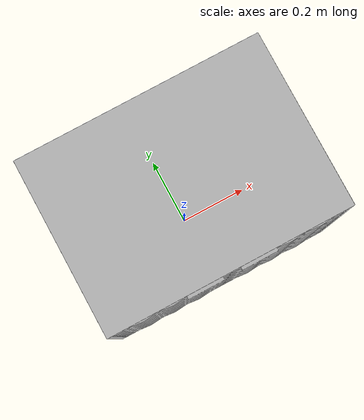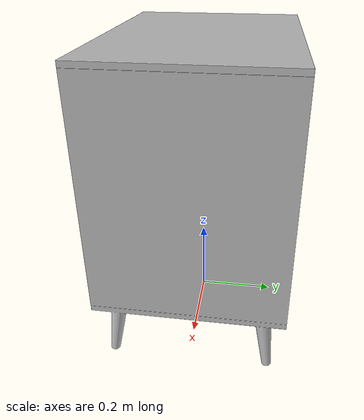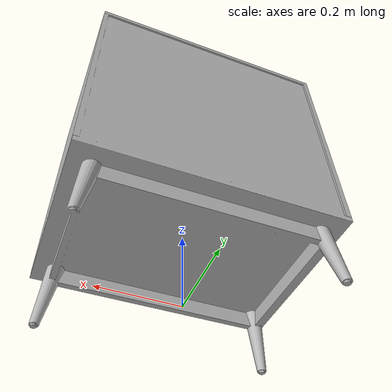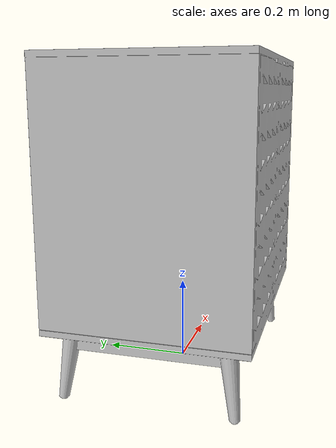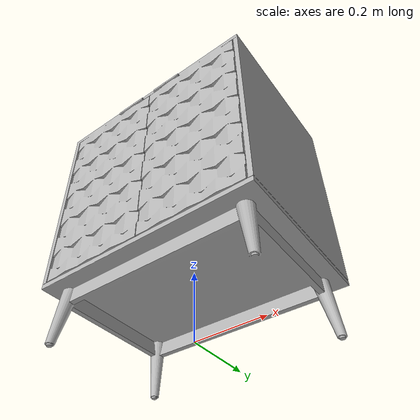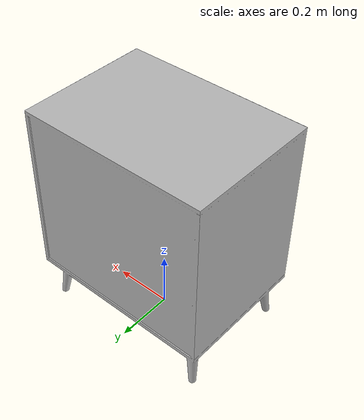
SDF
<sdf version="1.6">
	<model name="BarCabinets_O1e58b6dec52_lod0">
		<link name="main_link">
			<visual name="visual_RootNode">
				<geometry>
					<mesh>
						<uri>model://BarCabinets_O1e58b6dec52_lod0/meshes/visual_RootNode.dae</uri>
					</mesh>
				</geometry>
			</visual>
			<collision name="collision_RootNode_lod0_0">
				<geometry>
					<mesh>
						<uri>model://BarCabinets_O1e58b6dec52_lod0/meshes/collision_RootNode_lod0_0.dae</uri>
					</mesh>
				</geometry>
			</collision>
		</link>
	</model>
</sdf>
